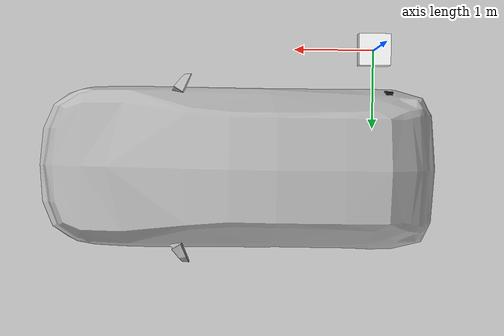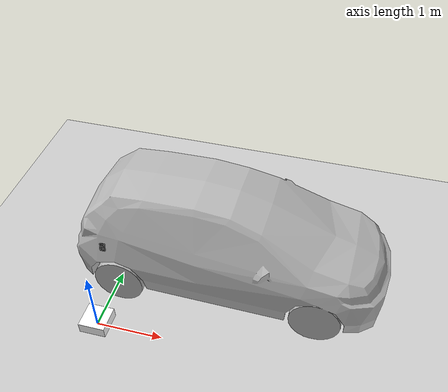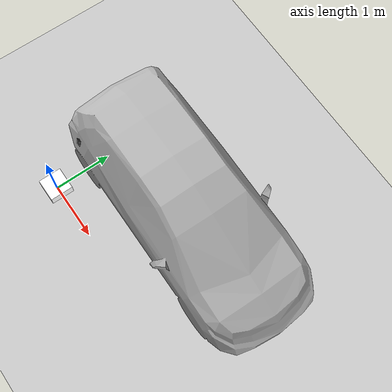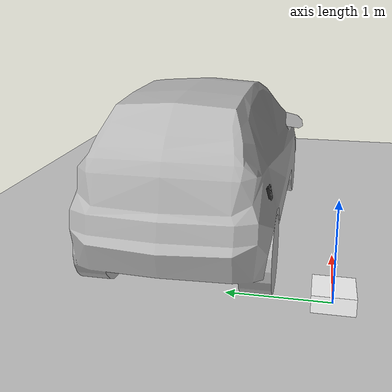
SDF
<sdf version='1.9'>
  <world name='EV_charging_world'>
    <physics name='1ms' type='ignored'>
      <max_step_size>0.001</max_step_size>
      <real_time_factor>1</real_time_factor>
      <real_time_update_rate>1000</real_time_update_rate>
    </physics>
    <plugin name='gz::sim::systems::Physics' filename='gz-sim-physics-system'/>
    <plugin name='gz::sim::systems::UserCommands' filename='gz-sim-user-commands-system'/>
    <plugin name='gz::sim::systems::SceneBroadcaster' filename='gz-sim-scene-broadcaster-system'/>
    <plugin name='gz::sim::systems::Contact' filename='gz-sim-contact-system'/>
    <plugin name='gz::sim::systems::Sensors' filename='gz-sim-sensors-system'>
      <render_engine>ogre2</render_engine>
    </plugin>
    <gravity>0 0 -9.8</gravity>
    <magnetic_field>6e-06 2.3e-05 -4.2e-05</magnetic_field>
    <atmosphere type='adiabatic'/>
    <scene>
      <ambient>0.4 0.4 0.4 1</ambient>
      <background>0.7 0.7 0.7 1</background>
      <shadows>true</shadows>
    </scene>
    <model name='ground_plane'>
      <static>true</static>
      <link name='link'>
        <collision name='collision'>
          <geometry>
            <plane>
              <normal>0 0 1</normal>
              <size>100 100</size>
            </plane>
          </geometry>
          <surface>
            <friction>
              <ode/>
            </friction>
            <bounce/>
            <contact/>
          </surface>
        </collision>
        <visual name='visual'>
          <geometry>
            <plane>
              <normal>0 0 1</normal>
              <size>100 100</size>
            </plane>
          </geometry>
          <material>
            <ambient>0.8 0.8 0.8 1</ambient>
            <diffuse>0.8 0.8 0.8 1</diffuse>
            <specular>0.8 0.8 0.8 1</specular>
          </material>
        </visual>
        <pose>0 0 0 0 -0 0</pose>
        <inertial>
          <pose>0 0 0 0 -0 0</pose>
          <mass>1</mass>
          <inertia>
            <ixx>1</ixx>
            <ixy>0</ixy>
            <ixz>0</ixz>
            <iyy>1</iyy>
            <iyz>0</iyz>
            <izz>1</izz>
          </inertia>
        </inertial>
        <enable_wind>false</enable_wind>
      </link>
      <pose>0 0 0 0 -0 0</pose>
      <self_collide>false</self_collide>
    </model>
    <model name='arm_base'>
      <pose>-0 -0 0.084999 0 -0 0</pose>
      <link name='box_link'>
        <inertial>
          <inertia>
            <ixx>0.16666</ixx>
            <ixy>0</ixy>
            <ixz>0</ixz>
            <iyy>0.16666</iyy>
            <iyz>0</iyz>
            <izz>0.16666</izz>
          </inertia>
          <mass>1</mass>
          <pose>0 0 0 0 -0 0</pose>
        </inertial>
        <collision name='box_collision'>
          <geometry>
            <box>
              <size>0.4 0.4 0.17</size>
            </box>
          </geometry>
          <surface>
            <friction>
              <ode/>
            </friction>
            <bounce/>
            <contact/>
          </surface>
        </collision>
        <visual name='box_visual'>
          <geometry>
            <box>
              <size>0.4 0.4 0.17</size>
            </box>
          </geometry>
          <material>
            <ambient>0.3 0.3 0.3 1</ambient>
            <diffuse>1 1 1 1</diffuse>
            <specular>1 1 1 1</specular>
          </material>
        </visual>
        <pose>0 0 0 0 -0 0</pose>
        <enable_wind>false</enable_wind>
      </link>
      <static>false</static>
      <self_collide>false</self_collide>
    </model>
    <model name='hatchback'>
      <pose>1.30541 1.48873 0 0 -0 1.57091</pose>
      <static>true</static>
      <link name='link'>
        <collision name='collision'>
          <pose>0 0 0 0 0 0</pose>
          <geometry>
            <mesh>
              <scale>0.0254 0.03 0.03</scale>
              <uri>file://///root/ros2_ws/install/ur_yt_sim/share/ur_yt_sim/models/Hatchback/meshes/hatchback.obj</uri>
            </mesh>
          </geometry>
        </collision>
        <visual name='visual'>
          <pose>0 0 0 0 0 0</pose>
          <geometry>
            <mesh>
              <scale>0.0254 0.03 0.03</scale>
              <uri>file://///root/ros2_ws/install/ur_yt_sim/share/ur_yt_sim/models/Hatchback/meshes/hatchback.obj</uri>
            </mesh>
          </geometry>
        </visual>
        <pose>0 0 0 0 -0 0</pose>
        <inertial>
          <pose>0 0 0 0 -0 0</pose>
          <mass>1</mass>
          <inertia>
            <ixx>1</ixx>
            <ixy>0</ixy>
            <ixz>0</ixz>
            <iyy>1</iyy>
            <iyz>0</iyz>
            <izz>1</izz>
          </inertia>
        </inertial>
        <enable_wind>false</enable_wind>
      </link>
      <self_collide>false</self_collide>
    </model>
    <model name='socket'>
      <link name='link'>
        <visual name='visual'>
          <geometry>
            <mesh>
              <uri>file:///root/ros2_ws/src/ur_yt_sim/models/socket/meshes/socket.dae</uri>
            </mesh>
          </geometry>
        </visual>
        <collision name='collision'>
          <geometry>
            <mesh>
              <uri>file:///root/ros2_ws/src/ur_yt_sim/models/socket/meshes/socket.dae</uri>
            </mesh>
          </geometry>
        </collision>
        <pose>0 0 0 0 -0 0</pose>
        <inertial>
          <pose>0 0 0 0 -0 0</pose>
          <mass>1</mass>
          <inertia>
            <ixx>1</ixx>
            <ixy>0</ixy>
            <ixz>0</ixz>
            <iyy>1</iyy>
            <iyz>0</iyz>
            <izz>1</izz>
          </inertia>
        </inertial>
        <enable_wind>false</enable_wind>
      </link>
      <pose>-0.063458 0.631696 0.970953 1.39304 0.002774 -0.005077</pose>
      <static>true</static>
      <self_collide>false</self_collide>
    </model>
    <light name='sun' type='directional'>
      <pose>0 0 10 0 -0 0</pose>
      <cast_shadows>true</cast_shadows>
      <intensity>1</intensity>
      <direction>-0.5 0.1 -0.9</direction>
      <diffuse>0.8 0.8 0.8 1</diffuse>
      <specular>0.2 0.2 0.2 1</specular>
      <attenuation>
        <range>1000</range>
        <linear>0.01</linear>
        <constant>0.90000000000000002</constant>
        <quadratic>0.001</quadratic>
      </attenuation>
      <spot>
        <inner_angle>0</inner_angle>
        <outer_angle>0</outer_angle>
        <falloff>0</falloff>
      </spot>
    </light>
  </world>
</sdf>
